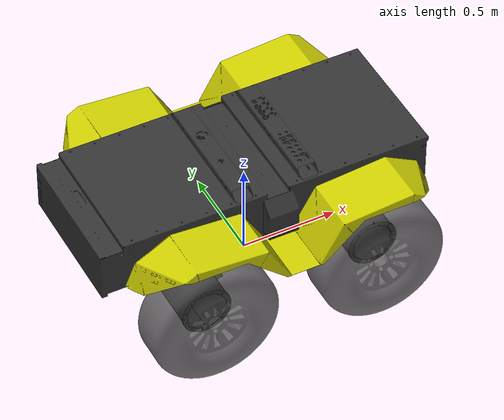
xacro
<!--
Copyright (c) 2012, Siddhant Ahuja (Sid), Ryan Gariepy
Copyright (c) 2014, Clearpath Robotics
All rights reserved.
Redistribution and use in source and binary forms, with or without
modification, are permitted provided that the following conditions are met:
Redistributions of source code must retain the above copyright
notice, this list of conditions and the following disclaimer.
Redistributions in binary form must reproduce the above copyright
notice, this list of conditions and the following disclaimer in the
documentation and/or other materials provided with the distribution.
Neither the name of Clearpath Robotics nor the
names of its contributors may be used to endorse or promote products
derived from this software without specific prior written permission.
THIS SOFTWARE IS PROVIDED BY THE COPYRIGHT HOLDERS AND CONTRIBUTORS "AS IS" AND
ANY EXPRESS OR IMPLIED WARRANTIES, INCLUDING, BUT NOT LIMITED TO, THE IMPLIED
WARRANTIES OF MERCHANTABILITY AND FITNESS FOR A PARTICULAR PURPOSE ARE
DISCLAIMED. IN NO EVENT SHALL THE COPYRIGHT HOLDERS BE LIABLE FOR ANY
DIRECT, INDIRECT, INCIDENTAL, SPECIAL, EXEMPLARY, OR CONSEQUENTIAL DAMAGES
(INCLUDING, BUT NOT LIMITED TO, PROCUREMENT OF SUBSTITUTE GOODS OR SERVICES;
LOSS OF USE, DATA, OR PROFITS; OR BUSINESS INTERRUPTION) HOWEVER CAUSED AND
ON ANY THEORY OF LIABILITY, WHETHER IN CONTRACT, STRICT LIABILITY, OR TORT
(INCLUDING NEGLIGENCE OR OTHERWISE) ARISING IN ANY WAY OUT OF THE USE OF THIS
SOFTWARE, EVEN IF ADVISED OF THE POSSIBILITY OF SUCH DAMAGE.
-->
<?xml version="1.0"?>

<robot name="grizzly" xmlns:xacro="http://www.ros.org/wiki/xacro">
  <property name="M_PI" value="3.1415926535897931" />
  <property name="ground_clearance" value="0.203" />

  <!-- Included URDF/XACRO Files -->
  <xacro:include filename="$(find grizzly_description)/urdf/materials.urdf.xacro" />
  <xacro:include filename="$(find grizzly_description)/urdf/wheel.urdf.xacro" />
  <xacro:include filename="$(find grizzly_description)/urdf/grizzly.gazebo" />

  <!-- Key Dimensions -->
  <property name="chassis_length" value="1.75" />
  <property name="chassis_width" value="0.711" />
  <property name="chassis_height" value="0.495" />
  <property name="chassis_mass" value="100" />
  <property name="front_axle_mass" value="50" />
  <property name="front_axle_radius" value="0.13" />
  <property name="front_axle_length" value="1.0" />
  <property name="base_x_origin_to_wheel_origin" value="0.448" />
  <property name="base_y_origin_to_wheel_origin" value="0.499" />
  <property name="base_z_origin_to_wheel_origin" value="0.0" />

  <!-- Root link of Grizzly -->
  <link name="base_link" />

  <!-- Actual body/chassis of the robot, separate from base_link due to KDL inertia issue. -->
  <link name="chassis_link">
    <inertial>
      <mass value="${chassis_mass}"/>
      <origin xyz="-0.013 -0.00061 -0.0205"/>
      <inertia ixx="64.010712692" ixy="0.214224647" ixz="-1.636784296"
               iyy="200.87" iyz="-0.048325439" izz="229.831441333" />
    </inertial>
    <visual>
      <origin xyz="0 0 ${ground_clearance}"
              rpy="${M_PI/2} 0 ${M_PI/2}" />
      <geometry>
        <mesh filename="package://grizzly_description/meshes/base_link.stl" />
      </geometry>
      <material name="DarkGrey" />
    </visual>
    <collision>
      <origin xyz="0 0 ${ground_clearance}"
              rpy="${M_PI/2} 0 ${M_PI/2}" />
      <geometry>
         <box size="${chassis_width} ${chassis_height} ${chassis_length}" />
      </geometry>
    </collision>
  </link>
  <joint name="chassis_joint"
         type="fixed">
    <origin xyz="0 0 ${ground_clearance}"
            rpy="0 0 0"/>
    <parent link="base_link" />
    <child link="chassis_link" />
  </joint>

  <!-- Add a sensor anchor link that points to the center of the robot top plate -->
  <link name="sensor_anchor_link"/>
  <joint name="sensor_anchor_joint" type="fixed">
    <origin xyz="0 0 ${chassis_height}"
            rpy="0 0 0" />
    <parent link="chassis_link" />
    <child link="sensor_anchor_link" />
  </joint>

  <!-- This is the approximate position of the GPS antenna on the standard configuration. -->
  <link name="navsat_link" />
  <joint name="navsat_joint" type="fixed">
    <origin xyz="-${chassis_length/2} 0 0"
            rpy="0 0 0" />
    <parent link="sensor_anchor_link" />
    <child link="navsat_link" />
  </joint>

  <!-- The position and orientation of the IMU in the rear compartment. -->
  <link name="imu_link" />
  <joint name="imu_joint" type="fixed">
    <origin xyz="-${chassis_length/2} 0 -${chassis_height/2}"
             rpy="${M_PI} ${M_PI/2} 0" />
    <parent link="sensor_anchor_link" />
    <child link="imu_link" />
  </joint>

  <!-- Purely decorative visual component. -->
  <link name="fenders_link">
    <visual>
      <origin xyz="0 0 ${ground_clearance}" rpy="${M_PI/2} 0 ${M_PI/2}"/>
      <geometry>
        <mesh filename="package://grizzly_description/meshes/bumper.stl" />
      </geometry>
      <material name="Yellow" />
    </visual>
  </link>
  <joint name="fenders_joint" type="fixed">
    <parent link="chassis_link" />
    <child link="fenders_link" />
  </joint>

  <link name="front_axle_link">
    <inertial>
      <mass value="${front_axle_mass}" />
      <origin xyz="0 0 0"/>
      <inertia ixx="9.9" ixy="0.0" ixz="0.0" iyy="9.9" iyz="0.0" izz="0.95" />
    </inertial>
    <visual>
      <origin xyz="-${ground_clearance} 0 ${base_y_origin_to_wheel_origin}"
              rpy="0 ${M_PI} ${M_PI/2}" />
      <geometry>
        <mesh filename="package://grizzly_description/meshes/front_axle.stl" />
      </geometry>
      <material name="DarkGrey" />
    </visual>
    <collision>
      <origin xyz="0 0 0"
              rpy="${M_PI/2} 0 0" />
      <geometry>
        <cylinder length="${front_axle_length}"
                  radius="${front_axle_radius}" />
      </geometry>
    </collision>
  </link>
  <joint name="front_axle_joint"
         type="revolute">
    <origin xyz="${base_x_origin_to_wheel_origin} 0 0"
            rpy="0 0 0" />
    <parent link="chassis_link" />
    <child link="front_axle_link" />
    <axis xyz="1 0 0"
          rpy="0 0 0" />
    <limit effort="10"
           lower="-0.2"
           upper="0.2"
           velocity="0.5" />
  </joint>

  <grizzly_wheel fr="front" lr="left" parent="front_axle_link" translateX="0" translateY="1" flipY="0" />
  <grizzly_wheel fr="front" lr="right" parent="front_axle_link" translateX="0" translateY="-1" flipY="1" />
  <grizzly_wheel fr="rear" lr="left" parent="chassis_link" translateX="-1" translateY="1" flipY="0" />
  <grizzly_wheel fr="rear" lr="right" parent="chassis_link" translateX="-1" translateY="-1" flipY="1" />
</robot>

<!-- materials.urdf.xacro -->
<robot>
  <material name="Black">
    <color rgba="0.0 0.0 0.0 1.0" />
  </material>
  <material name="Blue">
    <color rgba="0.0 0.0 0.8 1.0" />
  </material>
  <material name="Green">
    <color rgba="0.0 0.8 0.0 1.0" />
  </material>
  <material name="Grey">
    <color rgba="0.3 0.3 0.3 0.8" />
  </material>
  <material name="DarkGrey">
    <color rgba="0.2 0.2 0.2 1.0" />
  </material>
  <material name="Red">
    <color rgba="0.8 0.0 0.0 1.0" />
  </material>
  <material name="White">
    <color rgba="1.0 1.0 1.0 1.0" />
  </material>
  <material name="Yellow">
    <color rgba="0.8 0.8 0.0 1.0" />
  </material>
</robot>

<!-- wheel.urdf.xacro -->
<robot name="grizzly_wheel" xmlns:xacro="http://ros.org/wiki/xacro">
  <property name="wheel_mass" value="15" />
  <property name="wheel_radius" value="0.33" />
  <property name="wheel_width" value="0.252" />

  <xacro:macro name="grizzly_wheel"
               params="fr lr parent translateX translateY flipY">
    <!--fr : front, rear ; lr: left, right -->
    <link name="${fr}_${lr}_wheel">
      <inertial>
        <mass value="${wheel_mass}" />
        <origin xyz="-0.002 -0.198 0.003" />
        <inertia ixx="14.68" ixy="-0.033" ixz="0.07"
                 iyy="0" iyz="-0.05" izz="14.68" />
      </inertial>
      <visual>
        <origin xyz="0 0 0"
                rpy="${M_PI/2} ${flipY*M_PI} ${M_PI/2}" />
        <geometry>
          <mesh filename="package://grizzly_description/meshes/wheel.stl" />
        </geometry>
        <material name="Grey" />
      </visual>
      <collision>
        <origin xyz="0 0 0"
                rpy="${M_PI/2} ${flipY*M_PI} 0" />
        <geometry>
          <cylinder length="${wheel_width}"
                    radius="${wheel_radius}" />
        </geometry>
      </collision>
    </link>
    <gazebo reference="${fr}_${lr}_wheel">
      <mu1 value="1.1" />
      <mu2 value="1.1" />
      <kp value="10000000.0" />
      <kd value="1.0" />
      <fdir1 value="1 0 0" />
      <material>Gazebo/Grey</material>
      <turnGravityOff>false</turnGravityOff>
      <selfCollide>true</selfCollide>
    </gazebo>
    <joint name="joint_${fr}_${lr}_wheel"
           type="continuous">
      <parent link="${parent}" />
      <child link="${fr}_${lr}_wheel" />
      <origin xyz="${translateX * base_x_origin_to_wheel_origin} ${translateY * base_y_origin_to_wheel_origin} 0"
              rpy="0 0 0" />
      <axis xyz="0 1 0"
            rpy="0 0 0" />
      <limit effort="100"
             velocity="100" />
      <joint_properties damping="0.0"
                        friction="0.0" />
    </joint>
    <!-- Transmission links the joints and the controller -->
  </xacro:macro>
</robot>
